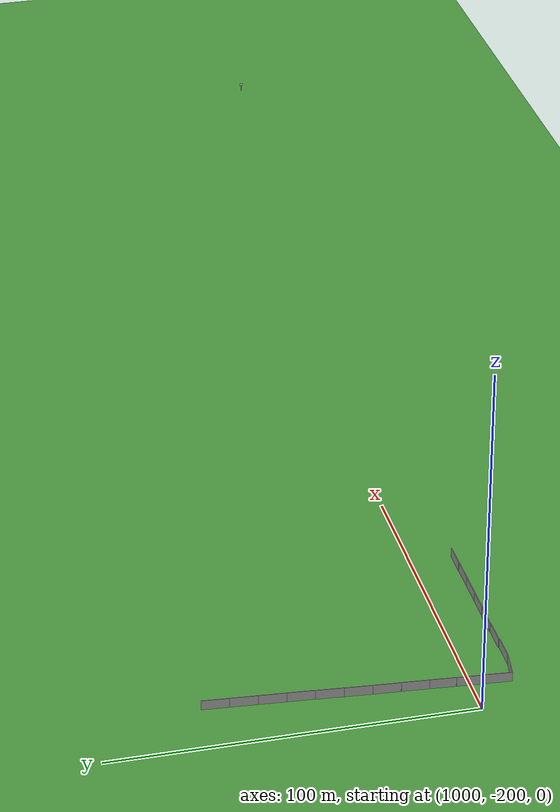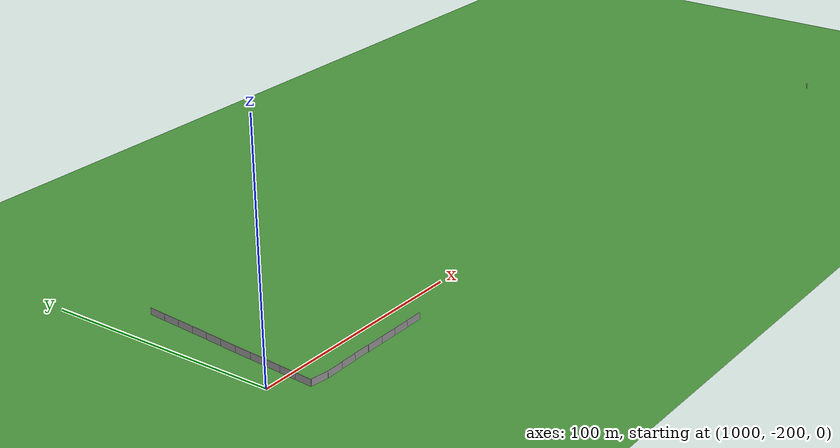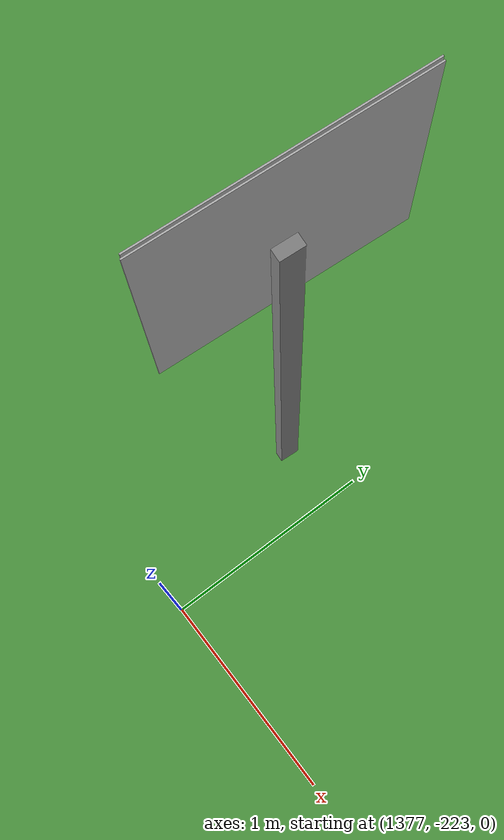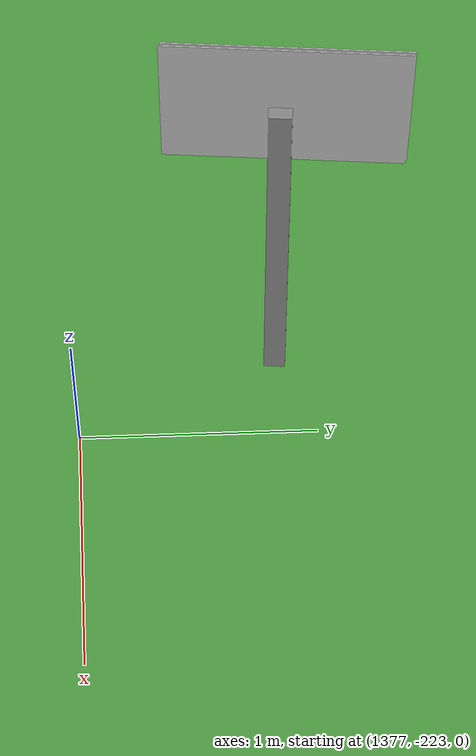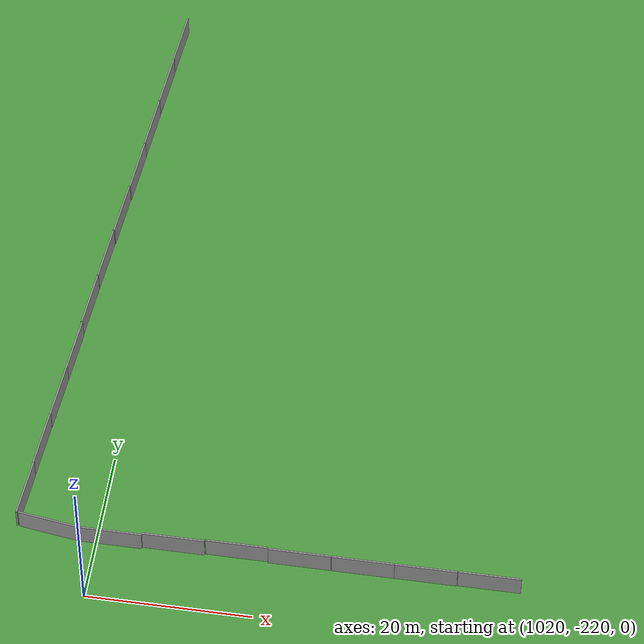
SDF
<sdf version="1.6">
 <world name="default">
  <light name="sun" type="directional">
   <pose>0 0 10 0 -0 0</pose>
   <diffuse>0.8 0.8 0.8 1</diffuse>
   <specular>0.2 0.2 0.2 1</specular>
   <attenuation>
    <range>1000</range>
    <constant>0.9</constant>
    <linear>0.01</linear>
    <quadratic>0.001</quadratic>
   </attenuation>
   <direction>-0.5 0.1 -0.9</direction>
  </light>
  <gravity>0 0 -9.8</gravity>
  <magnetic_field>6e-06 2.3e-05 -4.2e-05</magnetic_field>
  <atmosphere type="adiabatic"/>
  <physics name="default_physics" default="0" type="ode">
   <max_step_size>0.001</max_step_size>
   <real_time_factor>1</real_time_factor>
   <real_time_update_rate>1000</real_time_update_rate>
  </physics>
  <scene><ambient>0.4 0.4 0.4 1</ambient><background>0.7 0.7 0.7 1</background><shadows>1</shadows></scene>
  <audio><device>default</device></audio>
  <spherical_coordinates>
   <surface_model>EARTH_WGS84</surface_model>
   <latitude_deg>0</latitude_deg>
   <longitude_deg>0</longitude_deg>
   <elevation>0</elevation>
   <heading_deg>0</heading_deg>
  </spherical_coordinates>
  <model name="ground_plane">
   <static>1</static>
   <link name="link">
    <collision name="collision">
     <geometry><plane><normal>0 0 1</normal><size>100 100</size></plane></geometry>
     <surface><friction><ode><mu>100</mu><mu2>50</mu2></ode></friction></surface>
    </collision>
    <visual name="visual">
     <cast_shadows>0</cast_shadows>
     <geometry><plane><normal>0 0 1</normal><size>10000 10000</size></plane></geometry>
     <material>
      <script><uri>file://media/materials/scripts/ds_sim.material</uri><name>DSSim/GrassBackground</name></script>
     </material>
    </visual>
   </link>
  </model>
  <model name="grey_wall">
   <static>1</static>
   <link name="link">
    <pose>0 0 1.4 0 -0 0</pose>
    <collision name="collision"><geometry><box><size>7.5 0.2 2.8</size></box></geometry></collision>
    <visual name="visual">
     <cast_shadows>0</cast_shadows>
     <geometry><box><size>7.5 0.2 2.8</size></box></geometry>
     <material>
      <script>
       <uri>model://grey_wall/materials/scripts</uri>
       <uri>model://grey_wall/materials/textures</uri>
       <name>vrc/grey_wall</name>
      </script>
     </material>
    </visual>
   </link>
   <pose>1010.52 -207.476 0 0 0 -1.64981</pose>
  </model>
  <model name="grey_wall_clone">
   <static>1</static>
   <link name="link">
    <pose>0 0 1.4 0 -0 0</pose>
    <collision name="collision"><geometry><box><size>7.5 0.2 2.8</size></box></geometry></collision>
    <visual name="visual">
     <cast_shadows>0</cast_shadows>
     <geometry><box><size>7.5 0.2 2.8</size></box></geometry>
     <material>
      <script>
       <uri>model://grey_wall/materials/scripts</uri>
       <uri>model://grey_wall/materials/textures</uri>
       <name>vrc/grey_wall</name>
      </script>
     </material>
    </visual>
   </link>
   <pose>1011.06 -200.061 0 0 0 -1.64981</pose>
  </model>
  <model name="grey_wall_clone_0">
   <static>1</static>
   <link name="link">
    <pose>0 0 1.4 0 -0 0</pose>
    <collision name="collision"><geometry><box><size>7.5 0.2 2.8</size></box></geometry></collision>
    <visual name="visual">
     <cast_shadows>0</cast_shadows>
     <geometry><box><size>7.5 0.2 2.8</size></box></geometry>
     <material>
      <script>
       <uri>model://grey_wall/materials/scripts</uri>
       <uri>model://grey_wall/materials/textures</uri>
       <name>vrc/grey_wall</name>
      </script>
     </material>
    </visual>
   </link>
   <pose>1011.67 -192.562 0 0 0 -1.64981</pose>
  </model>
  <model name="grey_wall_clone_1">
   <static>1</static>
   <link name="link">
    <pose>0 0 1.4 0 -0 0</pose>
    <collision name="collision"><geometry><box><size>7.5 0.2 2.8</size></box></geometry></collision>
    <visual name="visual">
     <cast_shadows>0</cast_shadows>
     <geometry><box><size>7.5 0.2 2.8</size></box></geometry>
     <material>
      <script>
       <uri>model://grey_wall/materials/scripts</uri>
       <uri>model://grey_wall/materials/textures</uri>
       <name>vrc/grey_wall</name>
      </script>
     </material>
    </visual>
   </link>
   <pose>1012.23 -185.475 0 0 0 -1.64981</pose>
  </model>
  <model name="grey_wall_clone_2">
   <static>1</static>
   <link name="link">
    <pose>0 0 1.4 0 -0 0</pose>
    <collision name="collision"><geometry><box><size>7.5 0.2 2.8</size></box></geometry></collision>
    <visual name="visual">
     <cast_shadows>0</cast_shadows>
     <geometry><box><size>7.5 0.2 2.8</size></box></geometry>
     <material>
      <script>
       <uri>model://grey_wall/materials/scripts</uri>
       <uri>model://grey_wall/materials/textures</uri>
       <name>vrc/grey_wall</name>
      </script>
     </material>
    </visual>
   </link>
   <pose>1012.75 -177.944 0 0 0 -1.64981</pose>
  </model>
  <model name="grey_wall_clone_3">
   <static>1</static>
   <link name="link">
    <pose>0 0 1.4 0 -0 0</pose>
    <collision name="collision"><geometry><box><size>7.5 0.2 2.8</size></box></geometry></collision>
    <visual name="visual">
     <cast_shadows>0</cast_shadows>
     <geometry><box><size>7.5 0.2 2.8</size></box></geometry>
     <material>
      <script>
       <uri>model://grey_wall/materials/scripts</uri>
       <uri>model://grey_wall/materials/textures</uri>
       <name>vrc/grey_wall</name>
      </script>
     </material>
    </visual>
   </link>
   <pose>1013.34 -170.389 0 0 0 -1.64981</pose>
  </model>
  <model name="grey_wall_clone_4">
   <static>1</static>
   <link name="link">
    <pose>0 0 1.4 0 -0 0</pose>
    <collision name="collision"><geometry><box><size>7.5 0.2 2.8</size></box></geometry></collision>
    <visual name="visual">
     <cast_shadows>0</cast_shadows>
     <geometry><box><size>7.5 0.2 2.8</size></box></geometry>
     <material>
      <script>
       <uri>model://grey_wall/materials/scripts</uri>
       <uri>model://grey_wall/materials/textures</uri>
       <name>vrc/grey_wall</name>
      </script>
     </material>
    </visual>
   </link>
   <pose>1014 -162.877 0 0 0 -1.64981</pose>
  </model>
  <model name="grey_wall_clone_5">
   <static>1</static>
   <link name="link">
    <pose>0 0 1.4 0 -0 0</pose>
    <collision name="collision"><geometry><box><size>7.5 0.2 2.8</size></box></geometry></collision>
    <visual name="visual">
     <cast_shadows>0</cast_shadows>
     <geometry><box><size>7.5 0.2 2.8</size></box></geometry>
     <material>
      <script>
       <uri>model://grey_wall/materials/scripts</uri>
       <uri>model://grey_wall/materials/textures</uri>
       <name>vrc/grey_wall</name>
      </script>
     </material>
    </visual>
   </link>
   <pose>1014.66 -155.407 0 0 0 -1.64981</pose>
  </model>
  <model name="grey_wall_clone_6">
   <static>1</static>
   <link name="link">
    <pose>0 0 1.4 0 -0 0</pose>
    <collision name="collision"><geometry><box><size>7.5 0.2 2.8</size></box></geometry></collision>
    <visual name="visual">
     <cast_shadows>0</cast_shadows>
     <geometry><box><size>7.5 0.2 2.8</size></box></geometry>
     <material>
      <script>
       <uri>model://grey_wall/materials/scripts</uri>
       <uri>model://grey_wall/materials/textures</uri>
       <name>vrc/grey_wall</name>
      </script>
     </material>
    </visual>
   </link>
   <pose>1015.22 -147.918 0 0 0 -1.64981</pose>
  </model>
  <model name="grey_wall_clone_7">
   <static>1</static>
   <link name="link">
    <pose>0 0 1.4 0 -0 0</pose>
    <collision name="collision"><geometry><box><size>7.5 0.2 2.8</size></box></geometry></collision>
    <visual name="visual">
     <cast_shadows>0</cast_shadows>
     <geometry><box><size>7.5 0.2 2.8</size></box></geometry>
     <material>
      <script>
       <uri>model://grey_wall/materials/scripts</uri>
       <uri>model://grey_wall/materials/textures</uri>
       <name>vrc/grey_wall</name>
      </script>
     </material>
    </visual>
   </link>
   <pose>1015.8 -140.403 0 0 0 -1.64981</pose>
  </model>
  <model name="grey_wall_clone_8">
   <static>1</static>
   <link name="link">
    <pose>0 0 1.4 0 -0 0</pose>
    <collision name="collision"><geometry><box><size>7.5 0.2 2.8</size></box></geometry></collision>
    <visual name="visual">
     <cast_shadows>0</cast_shadows>
     <geometry><box><size>7.5 0.2 2.8</size></box></geometry>
     <material>
      <script>
       <uri>model://grey_wall/materials/scripts</uri>
       <uri>model://grey_wall/materials/textures</uri>
       <name>vrc/grey_wall</name>
      </script>
     </material>
    </visual>
   </link>
   <pose>1016.37 -132.909 0 0 0 -1.64981</pose>
  </model>
  <model name="grey_wall_0">
   <static>1</static>
   <link name="link">
    <pose>0 0 1.4 0 -0 0</pose>
    <collision name="collision"><geometry><box><size>7.5 0.2 2.8</size></box></geometry></collision>
    <visual name="visual">
     <cast_shadows>0</cast_shadows>
     <geometry><box><size>7.5 0.2 2.8</size></box></geometry>
     <material>
      <script>
       <uri>model://grey_wall/materials/scripts</uri>
       <uri>model://grey_wall/materials/textures</uri>
       <name>vrc/grey_wall</name>
      </script>
     </material>
    </visual>
   </link>
   <pose>1014.19 -211.705 0 0 0 -0.145495</pose>
  </model>
  <model name="grey_wall_0_clone">
   <static>1</static>
   <link name="link">
    <pose>0 0 1.4 0 -0 0</pose>
    <collision name="collision"><geometry><box><size>7.5 0.2 2.8</size></box></geometry></collision>
    <visual name="visual">
     <cast_shadows>0</cast_shadows>
     <geometry><box><size>7.5 0.2 2.8</size></box></geometry>
     <material>
      <script>
       <uri>model://grey_wall/materials/scripts</uri>
       <uri>model://grey_wall/materials/textures</uri>
       <name>vrc/grey_wall</name>
      </script>
     </material>
    </visual>
   </link>
   <pose>1021.75 -212.247 0 0 -0 0</pose>
  </model>
  <model name="grey_wall_0_clone_0">
   <static>1</static>
   <link name="link">
    <pose>0 0 1.4 0 -0 0</pose>
    <collision name="collision"><geometry><box><size>7.5 0.2 2.8</size></box></geometry></collision>
    <visual name="visual">
     <cast_shadows>0</cast_shadows>
     <geometry><box><size>7.5 0.2 2.8</size></box></geometry>
     <material>
      <script>
       <uri>model://grey_wall/materials/scripts</uri>
       <uri>model://grey_wall/materials/textures</uri>
       <name>vrc/grey_wall</name>
      </script>
     </material>
    </visual>
   </link>
   <pose>1029.27 -212.044 0 0 -0 0</pose>
  </model>
  <model name="grey_wall_0_clone_1">
   <static>1</static>
   <link name="link">
    <pose>0 0 1.4 0 -0 0</pose>
    <collision name="collision"><geometry><box><size>7.5 0.2 2.8</size></box></geometry></collision>
    <visual name="visual">
     <cast_shadows>0</cast_shadows>
     <geometry><box><size>7.5 0.2 2.8</size></box></geometry>
     <material>
      <script>
       <uri>model://grey_wall/materials/scripts</uri>
       <uri>model://grey_wall/materials/textures</uri>
       <name>vrc/grey_wall</name>
      </script>
     </material>
    </visual>
   </link>
   <pose>1036.86 -211.883 0 0 -0 0</pose>
  </model>
  <model name="grey_wall_0_clone_2">
   <static>1</static>
   <link name="link">
    <pose>0 0 1.4 0 -0 0</pose>
    <collision name="collision"><geometry><box><size>7.5 0.2 2.8</size></box></geometry></collision>
    <visual name="visual">
     <cast_shadows>0</cast_shadows>
     <geometry><box><size>7.5 0.2 2.8</size></box></geometry>
     <material>
      <script>
       <uri>model://grey_wall/materials/scripts</uri>
       <uri>model://grey_wall/materials/textures</uri>
       <name>vrc/grey_wall</name>
      </script>
     </material>
    </visual>
   </link>
   <pose>1044.38 -212.019 0 0 -0 0</pose>
  </model>
  <model name="grey_wall_0_clone_3">
   <static>1</static>
   <link name="link">
    <pose>0 0 1.4 0 -0 0</pose>
    <collision name="collision"><geometry><box><size>7.5 0.2 2.8</size></box></geometry></collision>
    <visual name="visual">
     <cast_shadows>0</cast_shadows>
     <geometry><box><size>7.5 0.2 2.8</size></box></geometry>
     <material>
      <script>
       <uri>model://grey_wall/materials/scripts</uri>
       <uri>model://grey_wall/materials/textures</uri>
       <name>vrc/grey_wall</name>
      </script>
     </material>
    </visual>
   </link>
   <pose>1051.92 -212.023 0 0 -0 0</pose>
  </model>
  <model name="grey_wall_0_clone_4">
   <static>1</static>
   <link name="link">
    <pose>0 0 1.4 0 -0 0</pose>
    <collision name="collision"><geometry><box><size>7.5 0.2 2.8</size></box></geometry></collision>
    <visual name="visual">
     <cast_shadows>0</cast_shadows>
     <geometry><box><size>7.5 0.2 2.8</size></box></geometry>
     <material>
      <script>
       <uri>model://grey_wall/materials/scripts</uri>
       <uri>model://grey_wall/materials/textures</uri>
       <name>vrc/grey_wall</name>
      </script>
     </material>
    </visual>
   </link>
   <pose>1059.36 -212.015 0 0 -0 0</pose>
  </model>
  <model name="grey_wall_0_clone_5">
   <static>1</static>
   <link name="link">
    <pose>0 0 1.4 0 -0 0</pose>
    <collision name="collision"><geometry><box><size>7.5 0.2 2.8</size></box></geometry></collision>
    <visual name="visual">
     <cast_shadows>0</cast_shadows>
     <geometry><box><size>7.5 0.2 2.8</size></box></geometry>
     <material>
      <script>
       <uri>model://grey_wall/materials/scripts</uri>
       <uri>model://grey_wall/materials/textures</uri>
       <name>vrc/grey_wall</name>
      </script>
     </material>
    </visual>
   </link>
   <pose>1066.92 -211.948 0 0 -0 0</pose>
  </model>
  <model name="stop">
   <link name="link">
    <collision name="collision">
     <geometry><mesh><scale>1 1 1</scale><uri>model://stop/meshes/stop.dae</uri></mesh></geometry>
    </collision>
    <visual name="visual">
     <geometry><mesh><scale>1 1 1</scale><uri>model://stop/meshes/stop.dae</uri></mesh></geometry>
    </visual>
    <inertial>
     <inertia><ixx>1</ixx><ixy>0</ixy><ixz>0</ixz><iyy>1</iyy><iyz>0</iyz><izz>1</izz></inertia>
     <mass>1</mass>
    </inertial>
   </link>
   <pose>1376.72 -222.173 0.102229 2e-06 -1e-06 3.06751</pose>
  </model>
 </world>
</sdf>
